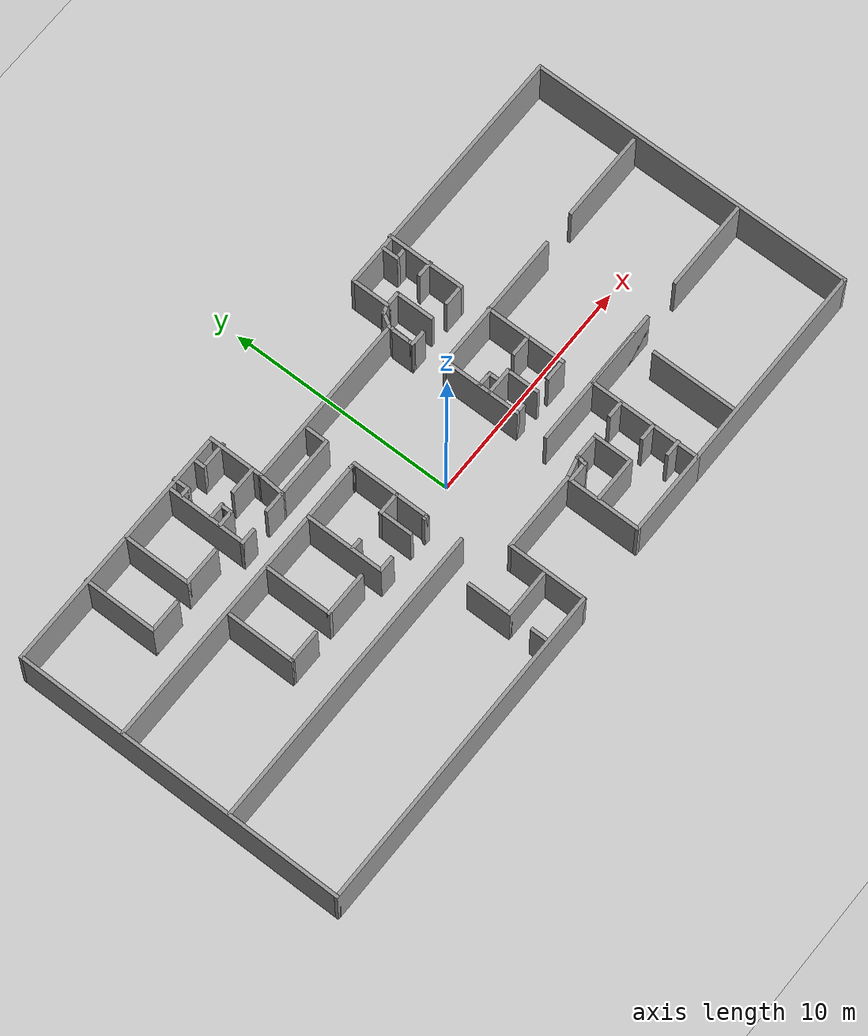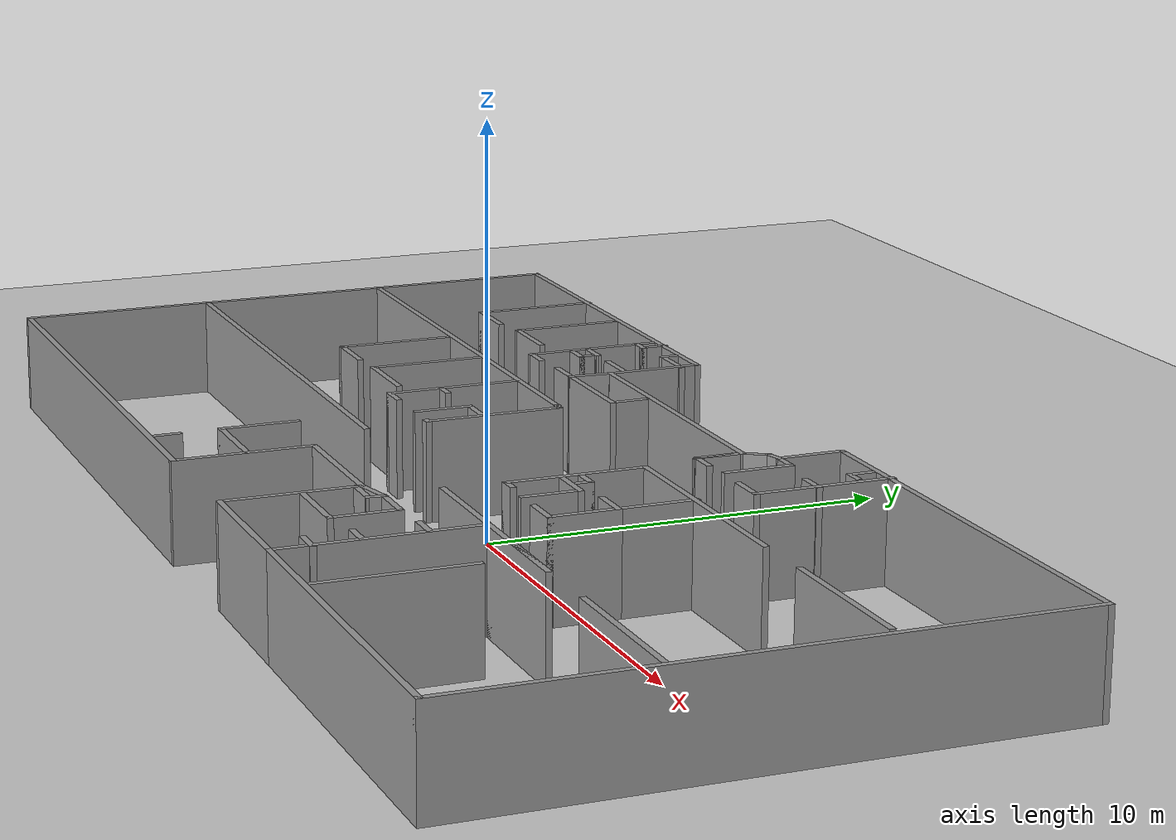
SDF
<sdf version="1.7">
 <world name="default">
  <model name="ground_plane">
   <static>1</static>
   <link name="link">
    <collision name="collision">
     <geometry><plane><normal>0 0 1</normal><size>100 100</size></plane></geometry>
     <surface>
      <contact><collide_bitmask>65535</collide_bitmask></contact>
      <friction><ode><mu>100</mu><mu2>50</mu2></ode></friction>
     </surface>
    </collision>
    <visual name="visual">
     <cast_shadows>0</cast_shadows>
     <geometry><plane><normal>0 0 1</normal><size>100 100</size></plane></geometry>
     <material>
      <script><uri>file://media/materials/scripts/gazebo.material</uri><name>Gazebo/Grey</name></script>
     </material>
    </visual>
   </link>
  </model>
  <model name="HQ">
   <pose>-0.222632 0.129868 0 0 -0 0</pose>
   <link name="Wall_1">
    <collision name="Wall_1_Collision">
     <geometry><box><size>6.25 0.15 2.5</size></box></geometry>
     <pose>0 0 1.25 0 -0 0</pose>
    </collision>
    <visual name="Wall_1_Visual">
     <pose>0 0 1.25 0 -0 0</pose>
     <geometry><box><size>6.25 0.15 2.5</size></box></geometry>
     <material>
      <script><uri>file://media/materials/scripts/gazebo.material</uri><name>Gazebo/Grey</name></script>
      <ambient>1 1 1 1</ambient>
     </material>
     <meta><layer>0</layer></meta>
    </visual>
    <pose>6.38643 -2.35903 0 0 -0 0</pose>
   </link>
   <link name="Wall_10">
    <collision name="Wall_10_Collision">
     <geometry><box><size>2 0.15 2.5</size></box></geometry>
     <pose>0 0 1.25 0 -0 0</pose>
    </collision>
    <visual name="Wall_10_Visual">
     <pose>0 0 1.25 0 -0 0</pose>
     <geometry><box><size>2 0.15 2.5</size></box></geometry>
     <material>
      <script><uri>file://media/materials/scripts/gazebo.material</uri><name>Gazebo/Grey</name></script>
      <ambient>1 1 1 1</ambient>
     </material>
     <meta><layer>0</layer></meta>
    </visual>
    <pose>3.54404 -5.35903 0 0 -0 3.14159</pose>
   </link>
   <link name="Wall_100">
    <collision name="Wall_100_Collision">
     <geometry><box><size>13.25 0.15 2.5</size></box></geometry>
     <pose>0 0 1.25 0 -0 0</pose>
    </collision>
    <visual name="Wall_100_Visual">
     <pose>0 0 1.25 0 -0 0</pose>
     <geometry><box><size>13.25 0.15 2.5</size></box></geometry>
     <material>
      <script><uri>file://media/materials/scripts/gazebo.material</uri><name>Gazebo/Grey</name></script>
      <ambient>1 1 1 1</ambient>
     </material>
     <meta><layer>0</layer></meta>
    </visual>
    <pose>-8.61792 2.54532 0 0 -0 0</pose>
   </link>
   <link name="Wall_102">
    <collision name="Wall_102_Collision">
     <geometry><box><size>3.5 0.15 2.5</size></box></geometry>
     <pose>0 0 1.25 0 -0 0</pose>
    </collision>
    <visual name="Wall_102_Visual">
     <pose>0 0 1.25 0 -0 0</pose>
     <geometry><box><size>3.5 0.15 2.5</size></box></geometry>
     <material>
      <script><uri>file://media/materials/scripts/gazebo.material</uri><name>Gazebo/Grey</name></script>
      <ambient>1 1 1 1</ambient>
     </material>
     <meta><layer>0</layer></meta>
    </visual>
    <pose>-4.55922 0.835536 0 0 -0 -1.5708</pose>
   </link>
   <link name="Wall_103">
    <collision name="Wall_103_Collision">
     <geometry><box><size>0.75 0.15 2.5</size></box></geometry>
     <pose>0 0 1.25 0 -0 0</pose>
    </collision>
    <visual name="Wall_103_Visual">
     <pose>0 0 1.25 0 -0 0</pose>
     <geometry><box><size>0.75 0.15 2.5</size></box></geometry>
     <material>
      <script><uri>file://media/materials/scripts/gazebo.material</uri><name>Gazebo/Grey</name></script>
      <ambient>1 1 1 1</ambient>
     </material>
     <meta><layer>0</layer></meta>
    </visual>
    <pose>-4.25922 -0.839464 0 0 -0 0</pose>
   </link>
   <link name="Wall_105">
    <collision name="Wall_105_Collision">
     <geometry><box><size>0.25 0.15 2.5</size></box></geometry>
     <pose>0 0 1.25 0 -0 0</pose>
    </collision>
    <visual name="Wall_105_Visual">
     <pose>0 0 1.25 0 -0 0</pose>
     <geometry><box><size>0.25 0.15 2.5</size></box></geometry>
     <material>
      <script><uri>file://media/materials/scripts/gazebo.material</uri><name>Gazebo/Grey</name></script>
      <ambient>1 1 1 1</ambient>
     </material>
     <meta><layer>0</layer></meta>
    </visual>
    <pose>-2.01962 2.53238 0 0 -0 -0.261799</pose>
   </link>
   <link name="Wall_106">
    <collision name="Wall_106_Collision">
     <geometry><box><size>0.25 0.15 2.5</size></box></geometry>
     <pose>0 0 1.25 0 -0 0</pose>
    </collision>
    <visual name="Wall_106_Visual">
     <pose>0 0 1.25 0 -0 0</pose>
     <geometry><box><size>0.25 0.15 2.5</size></box></geometry>
     <material>
      <script><uri>file://media/materials/scripts/gazebo.material</uri><name>Gazebo/Grey</name></script>
      <ambient>1 1 1 1</ambient>
     </material>
     <meta><layer>0</layer></meta>
    </visual>
    <pose>-1.92133 2.51944 0 0 -0 0</pose>
   </link>
   <link name="Wall_107">
    <collision name="Wall_107_Collision">
     <geometry><box><size>3.5 0.15 2.5</size></box></geometry>
     <pose>0 0 1.25 0 -0 0</pose>
    </collision>
    <visual name="Wall_107_Visual">
     <pose>0 0 1.25 0 -0 0</pose>
     <geometry><box><size>3.5 0.15 2.5</size></box></geometry>
     <material>
      <script><uri>file://media/materials/scripts/gazebo.material</uri><name>Gazebo/Grey</name></script>
      <ambient>1 1 1 1</ambient>
     </material>
     <meta><layer>0</layer></meta>
    </visual>
    <pose>-1.87133 0.844437 0 0 -0 -1.5708</pose>
   </link>
   <link name="Wall_108">
    <collision name="Wall_108_Collision">
     <geometry><box><size>0.25 0.15 2.5</size></box></geometry>
     <pose>0 0 1.25 0 -0 0</pose>
    </collision>
    <visual name="Wall_108_Visual">
     <pose>0 0 1.25 0 -0 0</pose>
     <geometry><box><size>0.25 0.15 2.5</size></box></geometry>
     <material>
      <script><uri>file://media/materials/scripts/gazebo.material</uri><name>Gazebo/Grey</name></script>
      <ambient>1 1 1 1</ambient>
     </material>
     <meta><layer>0</layer></meta>
    </visual>
    <pose>-1.92133 -0.830563 0 0 -0 3.14159</pose>
   </link>
   <link name="Wall_110">
    <collision name="Wall_110_Collision">
     <geometry><box><size>1 0.15 2.5</size></box></geometry>
     <pose>0 0 1.25 0 -0 0</pose>
    </collision>
    <visual name="Wall_110_Visual">
     <pose>0 0 1.25 0 -0 0</pose>
     <geometry><box><size>1 0.15 2.5</size></box></geometry>
     <material>
      <script><uri>file://media/materials/scripts/gazebo.material</uri><name>Gazebo/Grey</name></script>
      <ambient>1 1 1 1</ambient>
     </material>
     <meta><layer>0</layer></meta>
    </visual>
    <pose>-2.34075 0.56271 0 0 -0 3.14159</pose>
   </link>
   <link name="Wall_111">
    <collision name="Wall_111_Collision">
     <geometry><box><size>1.5 0.15 2.5</size></box></geometry>
     <pose>0 0 1.25 0 -0 0</pose>
    </collision>
    <visual name="Wall_111_Visual">
     <pose>0 0 1.25 0 -0 0</pose>
     <geometry><box><size>1.5 0.15 2.5</size></box></geometry>
     <material>
      <script><uri>file://media/materials/scripts/gazebo.material</uri><name>Gazebo/Grey</name></script>
      <ambient>1 1 1 1</ambient>
     </material>
     <meta><layer>0</layer></meta>
    </visual>
    <pose>-2.76575 -0.11229 0 0 -0 -1.5708</pose>
   </link>
   <link name="Wall_113">
    <collision name="Wall_113_Collision">
     <geometry><box><size>0.5 0.15 2.5</size></box></geometry>
     <pose>0 0 1.25 0 -0 0</pose>
    </collision>
    <visual name="Wall_113_Visual">
     <pose>0 0 1.25 0 -0 0</pose>
     <geometry><box><size>0.5 0.15 2.5</size></box></geometry>
     <material>
      <script><uri>file://media/materials/scripts/gazebo.material</uri><name>Gazebo/Grey</name></script>
      <ambient>1 1 1 1</ambient>
     </material>
     <meta><layer>0</layer></meta>
    </visual>
    <pose>-4.31466 0.493145 0 0 -0 0</pose>
   </link>
   <link name="Wall_115">
    <collision name="Wall_115_Collision">
     <geometry><box><size>3 0.15 2.5</size></box></geometry>
     <pose>0 0 1.25 0 -0 0</pose>
    </collision>
    <visual name="Wall_115_Visual">
     <pose>0 0 1.25 0 -0 0</pose>
     <geometry><box><size>3 0.15 2.5</size></box></geometry>
     <material>
      <script><uri>file://media/materials/scripts/gazebo.material</uri><name>Gazebo/Grey</name></script>
      <ambient>1 1 1 1</ambient>
     </material>
     <meta><layer>0</layer></meta>
    </visual>
    <pose>-7.02879 1.01597 0 0 -0 -1.5708</pose>
   </link>
   <link name="Wall_116">
    <collision name="Wall_116_Collision">
     <geometry><box><size>2 0.15 2.5</size></box></geometry>
     <pose>0 0 1.25 0 -0 0</pose>
    </collision>
    <visual name="Wall_116_Visual">
     <pose>0 0 1.25 0 -0 0</pose>
     <geometry><box><size>2 0.15 2.5</size></box></geometry>
     <material>
      <script><uri>file://media/materials/scripts/gazebo.material</uri><name>Gazebo/Grey</name></script>
      <ambient>1 1 1 1</ambient>
     </material>
     <meta><layer>0</layer></meta>
    </visual>
    <pose>-6.10379 -0.409029 0 0 -0 0</pose>
   </link>
   <link name="Wall_118">
    <collision name="Wall_118_Collision">
     <geometry><box><size>3 0.15 2.5</size></box></geometry>
     <pose>0 0 1.25 0 -0 0</pose>
    </collision>
    <visual name="Wall_118_Visual">
     <pose>0 0 1.25 0 -0 0</pose>
     <geometry><box><size>3 0.15 2.5</size></box></geometry>
     <material>
      <script><uri>file://media/materials/scripts/gazebo.material</uri><name>Gazebo/Grey</name></script>
      <ambient>1 1 1 1</ambient>
     </material>
     <meta><layer>0</layer></meta>
    </visual>
    <pose>-9.28966 0.946406 0 0 -0 -1.5708</pose>
   </link>
   <link name="Wall_119">
    <collision name="Wall_119_Collision">
     <geometry><box><size>1.5 0.15 2.5</size></box></geometry>
     <pose>0 0 1.25 0 -0 0</pose>
    </collision>
    <visual name="Wall_119_Visual">
     <pose>0 0 1.25 0 -0 0</pose>
     <geometry><box><size>1.5 0.15 2.5</size></box></geometry>
     <material>
      <script><uri>file://media/materials/scripts/gazebo.material</uri><name>Gazebo/Grey</name></script>
      <ambient>1 1 1 1</ambient>
     </material>
     <meta><layer>0</layer></meta>
    </visual>
    <pose>-8.61466 -0.478594 0 0 -0 0</pose>
   </link>
   <link name="Wall_12">
    <collision name="Wall_12_Collision">
     <geometry><box><size>0.75 0.15 2.5</size></box></geometry>
     <pose>0 0 1.25 0 -0 0</pose>
    </collision>
    <visual name="Wall_12_Visual">
     <pose>0 0 1.25 0 -0 0</pose>
     <geometry><box><size>0.75 0.15 2.5</size></box></geometry>
     <material>
      <script><uri>file://media/materials/scripts/gazebo.material</uri><name>Gazebo/Grey</name></script>
      <ambient>1 1 1 1</ambient>
     </material>
     <meta><layer>0</layer></meta>
    </visual>
    <pose>5.75817 -3.68077 0 0 -0 0</pose>
   </link>
   <link name="Wall_121">
    <collision name="Wall_121_Collision">
     <geometry><box><size>13.5 0.15 2.5</size></box></geometry>
     <pose>0 0 1.25 0 -0 0</pose>
    </collision>
    <visual name="Wall_121_Visual">
     <pose>0 0 1.25 0 -0 0</pose>
     <geometry><box><size>13.5 0.15 2.5</size></box></geometry>
     <material>
      <script><uri>file://media/materials/scripts/gazebo.material</uri><name>Gazebo/Grey</name></script>
      <ambient>1 1 1 1</ambient>
     </material>
     <meta><layer>0</layer></meta>
    </visual>
    <pose>-8.49292 -2.39381 0 0 -0 0</pose>
   </link>
   <link name="Wall_123">
    <collision name="Wall_123_Collision">
     <geometry><box><size>2 0.15 2.5</size></box></geometry>
     <pose>0 0 1.25 0 -0 0</pose>
    </collision>
    <visual name="Wall_123_Visual">
     <pose>0 0 1.25 0 -0 0</pose>
     <geometry><box><size>2 0.15 2.5</size></box></geometry>
     <material>
      <script><uri>file://media/materials/scripts/gazebo.material</uri><name>Gazebo/Grey</name></script>
      <ambient>1 1 1 1</ambient>
     </material>
     <meta><layer>0</layer></meta>
    </visual>
    <pose>-2.99401 -4.64055 0 0 -0 -1.5708</pose>
   </link>
   <link name="Wall_125">
    <collision name="Wall_125_Collision">
     <geometry><box><size>0.75 0.15 2.5</size></box></geometry>
     <pose>0 0 1.25 0 -0 0</pose>
    </collision>
    <visual name="Wall_125_Visual">
     <pose>0 0 1.25 0 -0 0</pose>
     <geometry><box><size>0.75 0.15 2.5</size></box></geometry>
     <material>
      <script><uri>file://media/materials/scripts/gazebo.material</uri><name>Gazebo/Grey</name></script>
      <ambient>1 1 1 1</ambient>
     </material>
     <meta><layer>0</layer></meta>
    </visual>
    <pose>-2.95922 -6.90251 0 0 -0 -1.5708</pose>
   </link>
   <link name="Wall_127">
    <collision name="Wall_127_Collision">
     <geometry><box><size>2.25 0.15 2.5</size></box></geometry>
     <pose>0 0 1.25 0 -0 0</pose>
    </collision>
    <visual name="Wall_127_Visual">
     <pose>0 0 1.25 0 -0 0</pose>
     <geometry><box><size>2.25 0.15 2.5</size></box></geometry>
     <material>
      <script><uri>file://media/materials/scripts/gazebo.material</uri><name>Gazebo/Grey</name></script>
      <ambient>1 1 1 1</ambient>
     </material>
     <meta><layer>0</layer></meta>
    </visual>
    <pose>-1.94401 -5.56555 0 0 -0 0</pose>
   </link>
   <link name="Wall_129">
    <collision name="Wall_129_Collision">
     <geometry><box><size>1.06261 0.15 2.5</size></box></geometry>
     <pose>0 0 1.25 0 -0 0</pose>
    </collision>
    <visual name="Wall_129_Visual">
     <pose>0 0 1.25 0 -0 0</pose>
     <geometry><box><size>1.06261 0.15 2.5</size></box></geometry>
     <material>
      <script><uri>file://media/materials/scripts/gazebo.material</uri><name>Gazebo/Grey</name></script>
      <ambient>1 1 1 1</ambient>
     </material>
     <meta><layer>0</layer></meta>
    </visual>
    <pose>2.95978 -3.86413 0 0 -0 0.232417</pose>
   </link>
   <link name="Wall_14">
    <collision name="Wall_14_Collision">
     <geometry><box><size>0.75 0.15 2.5</size></box></geometry>
     <pose>0 0 1.25 0 -0 0</pose>
    </collision>
    <visual name="Wall_14_Visual">
     <pose>0 0 1.25 0 -0 0</pose>
     <geometry><box><size>0.75 0.15 2.5</size></box></geometry>
     <material>
      <script><uri>file://media/materials/scripts/gazebo.material</uri><name>Gazebo/Grey</name></script>
      <ambient>1 1 1 1</ambient>
     </material>
     <meta><layer>0</layer></meta>
    </visual>
    <pose>5.78425 -5.17642 0 0 -0 3.14159</pose>
   </link>
   <link name="Wall_16">
    <collision name="Wall_16_Collision">
     <geometry><box><size>0.75 0.15 2.5</size></box></geometry>
     <pose>0 0 1.25 0 -0 0</pose>
    </collision>
    <visual name="Wall_16_Visual">
     <pose>0 0 1.25 0 -0 0</pose>
     <geometry><box><size>0.75 0.15 2.5</size></box></geometry>
     <material>
      <script><uri>file://media/materials/scripts/gazebo.material</uri><name>Gazebo/Grey</name></script>
      <ambient>1 1 1 1</ambient>
     </material>
     <meta><layer>0</layer></meta>
    </visual>
    <pose>5.85382 -6.28946 0 0 -0 3.14159</pose>
   </link>
   <link name="Wall_18">
    <collision name="Wall_18_Collision">
     <geometry><box><size>9.25 0.15 2.5</size></box></geometry>
     <pose>0 0 1.25 0 -0 0</pose>
    </collision>
    <visual name="Wall_18_Visual">
     <pose>0 0 1.25 0 -0 0</pose>
     <geometry><box><size>9.25 0.15 2.5</size></box></geometry>
     <material>
      <script><uri>file://media/materials/scripts/gazebo.material</uri><name>Gazebo/Grey</name></script>
      <ambient>1 1 1 1</ambient>
     </material>
     <meta><layer>0</layer></meta>
    </visual>
    <pose>10.669 -7.20903 0 0 -0 0</pose>
   </link>
   <link name="Wall_19">
    <collision name="Wall_19_Collision">
     <geometry><box><size>14.5 0.15 2.5</size></box></geometry>
     <pose>0 0 1.25 0 -0 0</pose>
    </collision>
    <visual name="Wall_19_Visual">
     <pose>0 0 1.25 0 -0 0</pose>
     <geometry><box><size>14.5 0.15 2.5</size></box></geometry>
     <material>
      <script><uri>file://media/materials/scripts/gazebo.material</uri><name>Gazebo/Grey</name></script>
      <ambient>1 1 1 1</ambient>
     </material>
     <meta><layer>0</layer></meta>
    </visual>
    <pose>15.219 -0.034029 0 0 -0 1.5708</pose>
   </link>
   <link name="Wall_20">
    <collision name="Wall_20_Collision">
     <geometry><box><size>11.5 0.15 2.5</size></box></geometry>
     <pose>0 0 1.25 0 -0 0</pose>
    </collision>
    <visual name="Wall_20_Visual">
     <pose>0 0 1.25 0 -0 0</pose>
     <geometry><box><size>11.5 0.15 2.5</size></box></geometry>
     <material>
      <script><uri>file://media/materials/scripts/gazebo.material</uri><name>Gazebo/Grey</name></script>
      <ambient>1 1 1 1</ambient>
     </material>
     <meta><layer>0</layer></meta>
    </visual>
    <pose>9.54404 7.14097 0 0 -0 3.14159</pose>
   </link>
   <link name="Wall_21">
    <collision name="Wall_21_Collision">
     <geometry><box><size>1.75 0.15 2.5</size></box></geometry>
     <pose>0 0 1.25 0 -0 0</pose>
    </collision>
    <visual name="Wall_21_Visual">
     <pose>0 0 1.25 0 -0 0</pose>
     <geometry><box><size>1.75 0.15 2.5</size></box></geometry>
     <material>
      <script><uri>file://media/materials/scripts/gazebo.material</uri><name>Gazebo/Grey</name></script>
      <ambient>1 1 1 1</ambient>
     </material>
     <meta><layer>0</layer></meta>
    </visual>
    <pose>3.86904 6.34097 0 0 -0 -1.5708</pose>
   </link>
   <link name="Wall_22">
    <collision name="Wall_22_Collision">
     <geometry><box><size>0.5 0.15 2.5</size></box></geometry>
     <pose>0 0 1.25 0 -0 0</pose>
    </collision>
    <visual name="Wall_22_Visual">
     <pose>0 0 1.25 0 -0 0</pose>
     <geometry><box><size>0.5 0.15 2.5</size></box></geometry>
     <material>
      <script><uri>file://media/materials/scripts/gazebo.material</uri><name>Gazebo/Grey</name></script>
      <ambient>1 1 1 1</ambient>
     </material>
     <meta><layer>0</layer></meta>
    </visual>
    <pose>3.7 5.49568 0 0 -0 -2.87979</pose>
   </link>
   <link name="Wall_23">
    <collision name="Wall_23_Collision">
     <geometry><box><size>0.75 0.15 2.5</size></box></geometry>
     <pose>0 0 1.25 0 -0 0</pose>
    </collision>
    <visual name="Wall_23_Visual">
     <pose>0 0 1.25 0 -0 0</pose>
     <geometry><box><size>0.75 0.15 2.5</size></box></geometry>
     <material>
      <script><uri>file://media/materials/scripts/gazebo.material</uri><name>Gazebo/Grey</name></script>
      <ambient>1 1 1 1</ambient>
     </material>
     <meta><layer>0</layer></meta>
    </visual>
    <pose>3.38096 5.19058 0 0 -0 -2.0944</pose>
   </link>
   <link name="Wall_24">
    <collision name="Wall_24_Collision">
     <geometry><box><size>7.75 0.15 2.5</size></box></geometry>
     <pose>0 0 1.25 0 -0 0</pose>
    </collision>
    <visual name="Wall_24_Visual">
     <pose>0 0 1.25 0 -0 0</pose>
     <geometry><box><size>7.75 0.15 2.5</size></box></geometry>
     <material>
      <script><uri>file://media/materials/scripts/gazebo.material</uri><name>Gazebo/Grey</name></script>
      <ambient>1 1 1 1</ambient>
     </material>
     <meta><layer>0</layer></meta>
    </visual>
    <pose>-0.569037 4.93077 0 0 -0 3.14159</pose>
   </link>
   <link name="Wall_25">
    <collision name="Wall_25_Collision">
     <geometry><box><size>2.5 0.15 2.5</size></box></geometry>
     <pose>0 0 1.25 0 -0 0</pose>
    </collision>
    <visual name="Wall_25_Visual">
     <pose>0 0 1.25 0 -0 0</pose>
     <geometry><box><size>2.5 0.15 2.5</size></box></geometry>
     <material>
      <script><uri>file://media/materials/scripts/gazebo.material</uri><name>Gazebo/Grey</name></script>
      <ambient>1 1 1 1</ambient>
     </material>
     <meta><layer>0</layer></meta>
    </visual>
    <pose>-4.36904 6.10577 0 0 -0 1.5708</pose>
   </link>
   <link name="Wall_26">
    <collision name="Wall_26_Collision">
     <geometry><box><size>11 0.15 2.5</size></box></geometry>
     <pose>0 0 1.25 0 -0 0</pose>
    </collision>
    <visual name="Wall_26_Visual">
     <pose>0 0 1.25 0 -0 0</pose>
     <geometry><box><size>11 0.15 2.5</size></box></geometry>
     <material>
      <script><uri>file://media/materials/scripts/gazebo.material</uri><name>Gazebo/Grey</name></script>
      <ambient>1 1 1 1</ambient>
     </material>
     <meta><layer>0</layer></meta>
    </visual>
    <pose>-9.79404 7.28077 0 0 -0 3.14159</pose>
   </link>
   <link name="Wall_27">
    <collision name="Wall_27_Collision">
     <geometry><box><size>14.75 0.15 2.5</size></box></geometry>
     <pose>0 0 1.25 0 -0 0</pose>
    </collision>
    <visual name="Wall_27_Visual">
     <pose>0 0 1.25 0 -0 0</pose>
     <geometry><box><size>14.75 0.15 2.5</size></box></geometry>
     <material>
      <script><uri>file://media/materials/scripts/gazebo.material</uri><name>Gazebo/Grey</name></script>
      <ambient>1 1 1 1</ambient>
     </material>
     <meta><layer>0</layer></meta>
    </visual>
    <pose>-15.219 -0.019231 0 0 -0 -1.5708</pose>
   </link>
   <link name="Wall_28">
    <collision name="Wall_28_Collision">
     <geometry><box><size>14.5 0.15 2.5</size></box></geometry>
     <pose>0 0 1.25 0 -0 0</pose>
    </collision>
    <visual name="Wall_28_Visual">
     <pose>0 0 1.25 0 -0 0</pose>
     <geometry><box><size>14.5 0.15 2.5</size></box></geometry>
     <material>
      <script><uri>file://media/materials/scripts/gazebo.material</uri><name>Gazebo/Grey</name></script>
      <ambient>1 1 1 1</ambient>
     </material>
     <meta><layer>0</layer></meta>
    </visual>
    <pose>-8.04404 -7.31923 0 0 -0 0</pose>
   </link>
   <link name="Wall_29">
    <collision name="Wall_29_Collision">
     <geometry><box><size>3.5 0.15 2.5</size></box></geometry>
     <pose>0 0 1.25 0 -0 0</pose>
    </collision>
    <visual name="Wall_29_Visual">
     <pose>0 0 1.25 0 -0 0</pose>
     <geometry><box><size>3.5 0.15 2.5</size></box></geometry>
     <material>
      <script><uri>file://media/materials/scripts/gazebo.material</uri><name>Gazebo/Grey</name></script>
      <ambient>1 1 1 1</ambient>
     </material>
     <meta><layer>0</layer></meta>
    </visual>
    <pose>-0.869037 -5.64423 0 0 -0 1.5708</pose>
   </link>
   <link name="Wall_3">
    <collision name="Wall_3_Collision">
     <geometry><box><size>5 0.15 2.5</size></box></geometry>
     <pose>0 0 1.25 0 -0 0</pose>
    </collision>
    <visual name="Wall_3_Visual">
     <pose>0 0 1.25 0 -0 0</pose>
     <geometry><box><size>5 0.15 2.5</size></box></geometry>
     <material>
      <script><uri>file://media/materials/scripts/gazebo.material</uri><name>Gazebo/Grey</name></script>
      <ambient>1 1 1 1</ambient>
     </material>
     <meta><layer>0</layer></meta>
    </visual>
    <pose>6.11904 -4.78403 0 0 -0 -1.5708</pose>
   </link>
   <link name="Wall_30">
    <collision name="Wall_30_Collision">
     <geometry><box><size>3.5355 0.15 2.5</size></box></geometry>
     <pose>0 0 1.25 0 -0 0</pose>
    </collision>
    <visual name="Wall_30_Visual">
     <pose>0 0 1.25 0 -0 0</pose>
     <geometry><box><size>3.5355 0.15 2.5</size></box></geometry>
     <material>
      <script><uri>file://media/materials/scripts/gazebo.material</uri><name>Gazebo/Grey</name></script>
      <ambient>1 1 1 1</ambient>
     </material>
     <meta><layer>0</layer></meta>
    </visual>
    <pose>0.823354 -3.96923 0 0 -0 0</pose>
   </link>
   <link name="Wall_32">
    <collision name="Wall_32_Collision">
     <geometry><box><size>3.46739 0.15 2.5</size></box></geometry>
     <pose>0 0 1.25 0 -0 0</pose>
    </collision>
    <visual name="Wall_32_Visual">
     <pose>0 0 1.25 0 -0 0</pose>
     <geometry><box><size>3.46739 0.15 2.5</size></box></geometry>
     <material>
      <script><uri>file://media/materials/scripts/gazebo.material</uri><name>Gazebo/Grey</name></script>
      <ambient>1 1 1 1</ambient>
     </material>
     <meta><layer>0</layer></meta>
    </visual>
    <pose>7.77773 -2.35903 0 0 -0 0</pose>
   </link>
   <link name="Wall_34">
    <collision name="Wall_34_Collision">
     <geometry><box><size>3.75 0.15 2.5</size></box></geometry>
     <pose>0 0 1.25 0 -0 0</pose>
    </collision>
    <visual name="Wall_34_Visual">
     <pose>0 0 1.25 0 -0 0</pose>
     <geometry><box><size>3.75 0.15 2.5</size></box></geometry>
     <material>
      <script><uri>file://media/materials/scripts/gazebo.material</uri><name>Gazebo/Grey</name></script>
      <ambient>1 1 1 1</ambient>
     </material>
     <meta><layer>0</layer></meta>
    </visual>
    <pose>8.48425 -5.25468 0 0 -0 1.5708</pose>
   </link>
   <link name="Wall_36">
    <collision name="Wall_36_Collision">
     <geometry><box><size>4 0.15 2.5</size></box></geometry>
     <pose>0 0 1.25 0 -0 0</pose>
    </collision>
    <visual name="Wall_36_Visual">
     <pose>0 0 1.25 0 -0 0</pose>
     <geometry><box><size>4 0.15 2.5</size></box></geometry>
     <material>
      <script><uri>file://media/materials/scripts/gazebo.material</uri><name>Gazebo/Grey</name></script>
      <ambient>1 1 1 1</ambient>
     </material>
     <meta><layer>0</layer></meta>
    </visual>
    <pose>13.1679 -2.32425 0 0 -0 3.14159</pose>
   </link>
   <link name="Wall_38">
    <collision name="Wall_38_Collision">
     <geometry><box><size>4 0.15 2.5</size></box></geometry>
     <pose>0 0 1.25 0 -0 0</pose>
    </collision>
    <visual name="Wall_38_Visual">
     <pose>0 0 1.25 0 -0 0</pose>
     <geometry><box><size>4 0.15 2.5</size></box></geometry>
     <material>
      <script><uri>file://media/materials/scripts/gazebo.material</uri><name>Gazebo/Grey</name></script>
      <ambient>1 1 1 1</ambient>
     </material>
     <meta><layer>0</layer></meta>
    </visual>
    <pose>13.0288 2.47575 0 0 -0 3.14159</pose>
   </link>
   <link name="Wall_4">
    <collision name="Wall_4_Collision">
     <geometry><box><size>3.75 0.15 2.5</size></box></geometry>
     <pose>0 0 1.25 0 -0 0</pose>
    </collision>
    <visual name="Wall_4_Visual">
     <pose>0 0 1.25 0 -0 0</pose>
     <geometry><box><size>3.75 0.15 2.5</size></box></geometry>
     <material>
      <script><uri>file://media/materials/scripts/gazebo.material</uri><name>Gazebo/Grey</name></script>
      <ambient>1 1 1 1</ambient>
     </material>
     <meta><layer>0</layer></meta>
    </visual>
    <pose>4.31904 -7.20903 0 0 -0 3.14159</pose>
   </link>
   <link name="Wall_40">
    <collision name="Wall_40_Collision">
     <geometry><box><size>6.25 0.15 2.5</size></box></geometry>
     <pose>0 0 1.25 0 -0 0</pose>
    </collision>
    <visual name="Wall_40_Visual">
     <pose>0 0 1.25 0 -0 0</pose>
     <geometry><box><size>6.25 0.15 2.5</size></box></geometry>
     <material>
      <script><uri>file://media/materials/scripts/gazebo.material</uri><name>Gazebo/Grey</name></script>
      <ambient>1 1 1 1</ambient>
     </material>
     <meta><layer>0</layer></meta>
    </visual>
    <pose>6.47773 2.44097 0 0 -0 3.14159</pose>
   </link>
   <link name="Wall_41">
    <collision name="Wall_41_Collision">
     <geometry><box><size>3.5 0.15 2.5</size></box></geometry>
     <pose>0 0 1.25 0 -0 0</pose>
    </collision>
    <visual name="Wall_41_Visual">
     <pose>0 0 1.25 0 -0 0</pose>
     <geometry><box><size>3.5 0.15 2.5</size></box></geometry>
     <material>
      <script><uri>file://media/materials/scripts/gazebo.material</uri><name>Gazebo/Grey</name></script>
      <ambient>1 1 1 1</ambient>
     </material>
     <meta><layer>0</layer></meta>
    </visual>
    <pose>3.42773 0.765971 0 0 -0 -1.5708</pose>
   </link>
   <link name="Wall_42">
    <collision name="Wall_42_Collision">
     <geometry><box><size>0.5 0.15 2.5</size></box></geometry>
     <pose>0 0 1.25 0 -0 0</pose>
    </collision>
    <visual name="Wall_42_Visual">
     <pose>0 0 1.25 0 -0 0</pose>
     <geometry><box><size>0.5 0.15 2.5</size></box></geometry>
     <material>
      <script><uri>file://media/materials/scripts/gazebo.material</uri><name>Gazebo/Grey</name></script>
      <ambient>1 1 1 1</ambient>
     </material>
     <meta><layer>0</layer></meta>
    </visual>
    <pose>3.60273 -0.909029 0 0 -0 0</pose>
   </link>
   <link name="Wall_44">
    <collision name="Wall_44_Collision">
     <geometry><box><size>1.5 0.15 2.5</size></box></geometry>
     <pose>0 0 1.25 0 -0 0</pose>
    </collision>
    <visual name="Wall_44_Visual">
     <pose>0 0 1.25 0 -0 0</pose>
     <geometry><box><size>1.5 0.15 2.5</size></box></geometry>
     <material>
      <script><uri>file://media/materials/scripts/gazebo.material</uri><name>Gazebo/Grey</name></script>
      <ambient>1 1 1 1</ambient>
     </material>
     <meta><layer>0</layer></meta>
    </visual>
    <pose>4.55382 -0.292725 0 0 -0 1.5708</pose>
   </link>
   <link name="Wall_45">
    <collision name="Wall_45_Collision">
     <geometry><box><size>1.25 0.15 2.5</size></box></geometry>
     <pose>0 0 1.25 0 -0 0</pose>
    </collision>
    <visual name="Wall_45_Visual">
     <pose>0 0 1.25 0 -0 0</pose>
     <geometry><box><size>1.25 0.15 2.5</size></box></geometry>
     <material>
      <script><uri>file://media/materials/scripts/gazebo.material</uri><name>Gazebo/Grey</name></script>
      <ambient>1 1 1 1</ambient>
     </material>
     <meta><layer>0</layer></meta>
    </visual>
    <pose>4.00382 0.382275 0 0 -0 3.14159</pose>
   </link>
   <link name="Wall_47">
    <collision name="Wall_47_Collision">
     <geometry><box><size>0.5 0.15 2.5</size></box></geometry>
     <pose>0 0 1.25 0 -0 0</pose>
    </collision>
    <visual name="Wall_47_Visual">
     <pose>0 0 1.25 0 -0 0</pose>
     <geometry><box><size>0.5 0.15 2.5</size></box></geometry>
     <material>
      <script><uri>file://media/materials/scripts/gazebo.material</uri><name>Gazebo/Grey</name></script>
      <ambient>1 1 1 1</ambient>
     </material>
     <meta><layer>0</layer></meta>
    </visual>
    <pose>4.03208 0.668145 0 0 -0 1.5708</pose>
   </link>
   <link name="Wall_48">
    <collision name="Wall_48_Collision">
     <geometry><box><size>0.75 0.15 2.5</size></box></geometry>
     <pose>0 0 1.25 0 -0 0</pose>
    </collision>
    <visual name="Wall_48_Visual">
     <pose>0 0 1.25 0 -0 0</pose>
     <geometry><box><size>0.75 0.15 2.5</size></box></geometry>
     <material>
      <script><uri>file://media/materials/scripts/gazebo.material</uri><name>Gazebo/Grey</name></script>
      <ambient>1 1 1 1</ambient>
     </material>
     <meta><layer>0</layer></meta>
    </visual>
    <pose>3.73208 0.843145 0 0 -0 3.14159</pose>
   </link>
   <link name="Wall_5">
    <collision name="Wall_5_Collision">
     <geometry><box><size>3.25 0.15 2.5</size></box></geometry>
     <pose>0 0 1.25 0 -0 0</pose>
    </collision>
    <visual name="Wall_5_Visual">
     <pose>0 0 1.25 0 -0 0</pose>
     <geometry><box><size>3.25 0.15 2.5</size></box></geometry>
     <material>
      <script><uri>file://media/materials/scripts/gazebo.material</uri><name>Gazebo/Grey</name></script>
      <ambient>1 1 1 1</ambient>
     </material>
     <meta><layer>0</layer></meta>
    </visual>
    <pose>2.51904 -5.65903 0 0 -0 1.5708</pose>
   </link>
   <link name="Wall_50">
    <collision name="Wall_50_Collision">
     <geometry><box><size>2 0.15 2.5</size></box></geometry>
     <pose>0 0 1.25 0 -0 0</pose>
    </collision>
    <visual name="Wall_50_Visual">
     <pose>0 0 1.25 0 -0 0</pose>
     <geometry><box><size>2 0.15 2.5</size></box></geometry>
     <material>
      <script><uri>file://media/materials/scripts/gazebo.material</uri><name>Gazebo/Grey</name></script>
      <ambient>1 1 1 1</ambient>
     </material>
     <meta><layer>0</layer></meta>
    </visual>
    <pose>6.08425 1.55075 0 0 -0 -1.5708</pose>
   </link>
   <link name="Wall_51">
    <collision name="Wall_51_Collision">
     <geometry><box><size>1 0.15 2.5</size></box></geometry>
     <pose>0 0 1.25 0 -0 0</pose>
    </collision>
    <visual name="Wall_51_Visual">
     <pose>0 0 1.25 0 -0 0</pose>
     <geometry><box><size>1 0.15 2.5</size></box></geometry>
     <material>
      <script><uri>file://media/materials/scripts/gazebo.material</uri><name>Gazebo/Grey</name></script>
      <ambient>1 1 1 1</ambient>
     </material>
     <meta><layer>0</layer></meta>
    </visual>
    <pose>5.65925 0.625754 0 0 -0 3.14159</pose>
   </link>
   <link name="Wall_53">
    <collision name="Wall_53_Collision">
     <geometry><box><size>1.75 0.15 2.5</size></box></geometry>
     <pose>0 0 1.25 0 -0 0</pose>
    </collision>
    <visual name="Wall_53_Visual">
     <pose>0 0 1.25 0 -0 0</pose>
     <geometry><box><size>1.75 0.15 2.5</size></box></geometry>
     <material>
      <script><uri>file://media/materials/scripts/gazebo.material</uri><name>Gazebo/Grey</name></script>
      <ambient>1 1 1 1</ambient>
     </material>
     <meta><layer>0</layer></meta>
    </visual>
    <pose>6.08425 -0.174246 0 0 -0 -1.5708</pose>
   </link>
   <link name="Wall_54">
    <collision name="Wall_54_Collision">
     <geometry><box><size>1 0.15 2.5</size></box></geometry>
     <pose>0 0 1.25 0 -0 0</pose>
    </collision>
    <visual name="Wall_54_Visual">
     <pose>0 0 1.25 0 -0 0</pose>
     <geometry><box><size>1 0.15 2.5</size></box></geometry>
     <material>
      <script><uri>file://media/materials/scripts/gazebo.material</uri><name>Gazebo/Grey</name></script>
      <ambient>1 1 1 1</ambient>
     </material>
     <meta><layer>0</layer></meta>
    </visual>
    <pose>5.65925 -0.974246 0 0 -0 3.14159</pose>
   </link>
   <link name="Wall_56">
    <collision name="Wall_56_Collision">
     <geometry><box><size>3.5 0.15 2.5</size></box></geometry>
     <pose>0 0 1.25 0 -0 0</pose>
    </collision>
    <visual name="Wall_56_Visual">
     <pose>0 0 1.25 0 -0 0</pose>
     <geometry><box><size>3.5 0.15 2.5</size></box></geometry>
     <material>
      <script><uri>file://media/materials/scripts/gazebo.material</uri><name>Gazebo/Grey</name></script>
      <ambient>1 1 1 1</ambient>
     </material>
     <meta><layer>0</layer></meta>
    </visual>
    <pose>6.15382 5.53119 0 0 -0 -1.5708</pose>
   </link>
   <link name="Wall_57">
    <collision name="Wall_57_Collision">
     <geometry><box><size>1 0.15 2.5</size></box></geometry>
     <pose>0 0 1.25 0 -0 0</pose>
    </collision>
    <visual name="Wall_57_Visual">
     <pose>0 0 1.25 0 -0 0</pose>
     <geometry><box><size>1 0.15 2.5</size></box></geometry>
     <material>
      <script><uri>file://media/materials/scripts/gazebo.material</uri><name>Gazebo/Grey</name></script>
      <ambient>1 1 1 1</ambient>
     </material>
     <meta><layer>0</layer></meta>
    </visual>
    <pose>5.72882 3.85619 0 0 -0 3.14159</pose>
   </link>
   <link name="Wall_59">
    <collision name="Wall_59_Collision">
     <geometry><box><size>0.75 0.15 2.5</size></box></geometry>
     <pose>0 0 1.25 0 -0 0</pose>
    </collision>
    <visual name="Wall_59_Visual">
     <pose>0 0 1.25 0 -0 0</pose>
     <geometry><box><size>0.75 0.15 2.5</size></box></geometry>
     <material>
      <script><uri>file://media/materials/scripts/gazebo.material</uri><name>Gazebo/Grey</name></script>
      <ambient>1 1 1 1</ambient>
     </material>
     <meta><layer>0</layer></meta>
    </visual>
    <pose>5.5973 6.76054 0 0 -0 -1.5708</pose>
   </link>
   <link name="Wall_6">
    <collision name="Wall_6_Collision">
     <geometry><box><size>1 0.15 2.5</size></box></geometry>
     <pose>0 0 1.25 0 -0 0</pose>
    </collision>
    <visual name="Wall_6_Visual">
     <pose>0 0 1.25 0 -0 0</pose>
     <geometry><box><size>1 0.15 2.5</size></box></geometry>
     <material>
      <script><uri>file://media/materials/scripts/gazebo.material</uri><name>Gazebo/Grey</name></script>
      <ambient>1 1 1 1</ambient>
     </material>
     <meta><layer>0</layer></meta>
    </visual>
    <pose>2.94404 -4.10903 0 0 -0 0</pose>
   </link>
   <link name="Wall_60">
    <collision name="Wall_60_Collision">
     <geometry><box><size>0.5 0.15 2.5</size></box></geometry>
     <pose>0 0 1.25 0 -0 0</pose>
    </collision>
    <visual name="Wall_60_Visual">
     <pose>0 0 1.25 0 -0 0</pose>
     <geometry><box><size>0.5 0.15 2.5</size></box></geometry>
     <material>
      <script><uri>file://media/materials/scripts/gazebo.material</uri><name>Gazebo/Grey</name></script>
      <ambient>1 1 1 1</ambient>
     </material>
     <meta><layer>0</layer></meta>
    </visual>
    <pose>5.7723 6.46054 0 0 -0 0</pose>
   </link>
   <link name="Wall_62">
    <collision name="Wall_62_Collision">
     <geometry><box><size>1 0.15 2.5</size></box></geometry>
     <pose>0 0 1.25 0 -0 0</pose>
    </collision>
    <visual name="Wall_62_Visual">
     <pose>0 0 1.25 0 -0 0</pose>
     <geometry><box><size>1 0.15 2.5</size></box></geometry>
     <material>
      <script><uri>file://media/materials/scripts/gazebo.material</uri><name>Gazebo/Grey</name></script>
      <ambient>1 1 1 1</ambient>
     </material>
     <meta><layer>0</layer></meta>
    </visual>
    <pose>3.1973 4.24206 0 0 -0 -1.5708</pose>
   </link>
   <link name="Wall_63">
    <collision name="Wall_63_Collision">
     <geometry><box><size>0.75 0.15 2.5</size></box></geometry>
     <pose>0 0 1.25 0 -0 0</pose>
    </collision>
    <visual name="Wall_63_Visual">
     <pose>0 0 1.25 0 -0 0</pose>
     <geometry><box><size>0.75 0.15 2.5</size></box></geometry>
     <material>
      <script><uri>file://media/materials/scripts/gazebo.material</uri><name>Gazebo/Grey</name></script>
      <ambient>1 1 1 1</ambient>
     </material>
     <meta><layer>0</layer></meta>
    </visual>
    <pose>3.4973 3.81706 0 0 -0 0</pose>
   </link>
   <link name="Wall_65">
    <collision name="Wall_65_Collision">
     <geometry><box><size>0.75 0.15 2.5</size></box></geometry>
     <pose>0 0 1.25 0 -0 0</pose>
    </collision>
    <visual name="Wall_65_Visual">
     <pose>0 0 1.25 0 -0 0</pose>
     <geometry><box><size>0.75 0.15 2.5</size></box></geometry>
     <material>
      <script><uri>file://media/materials/scripts/gazebo.material</uri><name>Gazebo/Grey</name></script>
      <ambient>1 1 1 1</ambient>
     </material>
     <meta><layer>0</layer></meta>
    </visual>
    <pose>5.8886 5.36271 0 0 -0 3.14159</pose>
   </link>
   <link name="Wall_67">
    <collision name="Wall_67_Collision">
     <geometry><box><size>0.75 0.15 2.5</size></box></geometry>
     <pose>0 0 1.25 0 -0 0</pose>
    </collision>
    <visual name="Wall_67_Visual">
     <pose>0 0 1.25 0 -0 0</pose>
     <geometry><box><size>0.75 0.15 2.5</size></box></geometry>
     <material>
      <script><uri>file://media/materials/scripts/gazebo.material</uri><name>Gazebo/Grey</name></script>
      <ambient>1 1 1 1</ambient>
     </material>
     <meta><layer>0</layer></meta>
    </visual>
    <pose>4.16904 5.54097 0 0 -0 0</pose>
   </link>
   <link name="Wall_68">
    <collision name="Wall_68_Collision">
     <geometry><box><size>1.75 0.15 2.5</size></box></geometry>
     <pose>0 0 1.25 0 -0 0</pose>
    </collision>
    <visual name="Wall_68_Visual">
     <pose>0 0 1.25 0 -0 0</pose>
     <geometry><box><size>1.75 0.15 2.5</size></box></geometry>
     <material>
      <script><uri>file://media/materials/scripts/gazebo.material</uri><name>Gazebo/Grey</name></script>
      <ambient>1 1 1 1</ambient>
     </material>
     <meta><layer>0</layer></meta>
    </visual>
    <pose>4.46904 4.74097 0 0 -0 -1.5708</pose>
   </link>
   <link name="Wall_7">
    <collision name="Wall_7_Collision">
     <geometry><box><size>0.501724 0.15 2.5</size></box></geometry>
     <pose>0 0 1.25 0 -0 0</pose>
    </collision>
    <visual name="Wall_7_Visual">
     <pose>0 0 1.25 0 -0 0</pose>
     <geometry><box><size>0.501724 0.15 2.5</size></box></geometry>
     <material>
      <script><uri>file://media/materials/scripts/gazebo.material</uri><name>Gazebo/Grey</name></script>
      <ambient>1 1 1 1</ambient>
     </material>
     <meta><layer>0</layer></meta>
    </visual>
    <pose>3.38643 -3.93403 0 0 -0 1.47174</pose>
   </link>
   <link name="Wall_70">
    <collision name="Wall_70_Collision">
     <geometry><box><size>1.26422 0.15 2.5</size></box></geometry>
     <pose>0 0 1.25 0 -0 0</pose>
    </collision>
    <visual name="Wall_70_Visual">
     <pose>0 0 1.25 0 -0 0</pose>
     <geometry><box><size>1.26422 0.15 2.5</size></box></geometry>
     <material>
      <script><uri>file://media/materials/scripts/gazebo.material</uri><name>Gazebo/Grey</name></script>
      <ambient>1 1 1 1</ambient>
     </material>
     <meta><layer>0</layer></meta>
    </visual>
    <pose>3.21413 4.37391 0 0 -0 -1.60102</pose>
   </link>
   <link name="Wall_72">
    <collision name="Wall_72_Collision">
     <geometry><box><size>1 0.15 2.5</size></box></geometry>
     <pose>0 0 1.25 0 -0 0</pose>
    </collision>
    <visual name="Wall_72_Visual">
     <pose>0 0 1.25 0 -0 0</pose>
     <geometry><box><size>1 0.15 2.5</size></box></geometry>
     <material>
      <script><uri>file://media/materials/scripts/gazebo.material</uri><name>Gazebo/Grey</name></script>
      <ambient>1 1 1 1</ambient>
     </material>
     <meta><layer>0</layer></meta>
    </visual>
    <pose>-1.84618 4.31162 0 0 -0 -1.5708</pose>
   </link>
   <link name="Wall_73">
    <collision name="Wall_73_Collision">
     <geometry><box><size>2.75 0.15 2.5</size></box></geometry>
     <pose>0 0 1.25 0 -0 0</pose>
    </collision>
    <visual name="Wall_73_Visual">
     <pose>0 0 1.25 0 -0 0</pose>
     <geometry><box><size>2.75 0.15 2.5</size></box></geometry>
     <material>
      <script><uri>file://media/materials/scripts/gazebo.material</uri><name>Gazebo/Grey</name></script>
      <ambient>1 1 1 1</ambient>
     </material>
     <meta><layer>0</layer></meta>
    </visual>
    <pose>-3.14618 3.88662 0 0 -0 3.14159</pose>
   </link>
   <link name="Wall_74">
    <collision name="Wall_74_Collision">
     <geometry><box><size>1 0.15 2.5</size></box></geometry>
     <pose>0 0 1.25 0 -0 0</pose>
    </collision>
    <visual name="Wall_74_Visual">
     <pose>0 0 1.25 0 -0 0</pose>
     <geometry><box><size>1 0.15 2.5</size></box></geometry>
     <material>
      <script><uri>file://media/materials/scripts/gazebo.material</uri><name>Gazebo/Grey</name></script>
      <ambient>1 1 1 1</ambient>
     </material>
     <meta><layer>0</layer></meta>
    </visual>
    <pose>-4.87118 3.88662 0 0 -0 3.14159</pose>
   </link>
   <link name="Wall_76">
    <collision name="Wall_76_Collision">
     <geometry><box><size>1.19699 0.15 2.5</size></box></geometry>
     <pose>0 0 1.25 0 -0 0</pose>
    </collision>
    <visual name="Wall_76_Visual">
     <pose>0 0 1.25 0 -0 0</pose>
     <geometry><box><size>1.19699 0.15 2.5</size></box></geometry>
     <material>
      <script><uri>file://media/materials/scripts/gazebo.material</uri><name>Gazebo/Grey</name></script>
      <ambient>1 1 1 1</ambient>
     </material>
     <meta><layer>0</layer></meta>
    </visual>
    <pose>-4.40761 4.4087 0 0 -0 -1.64454</pose>
   </link>
   <link name="Wall_78">
    <collision name="Wall_78_Collision">
     <geometry><box><size>0.75 0.15 2.5</size></box></geometry>
     <pose>0 0 1.25 0 -0 0</pose>
    </collision>
    <visual name="Wall_78_Visual">
     <pose>0 0 1.25 0 -0 0</pose>
     <geometry><box><size>0.75 0.15 2.5</size></box></geometry>
     <material>
      <script><uri>file://media/materials/scripts/gazebo.material</uri><name>Gazebo/Grey</name></script>
      <ambient>1 1 1 1</ambient>
     </material>
     <meta><layer>0</layer></meta>
    </visual>
    <pose>-6.52879 3.79749 0 0 -0 3.14159</pose>
   </link>
   <link name="Wall_79">
    <collision name="Wall_79_Collision">
     <geometry><box><size>3.5 0.15 2.5</size></box></geometry>
     <pose>0 0 1.25 0 -0 0</pose>
    </collision>
    <visual name="Wall_79_Visual">
     <pose>0 0 1.25 0 -0 0</pose>
     <geometry><box><size>3.5 0.15 2.5</size></box></geometry>
     <material>
      <script><uri>file://media/materials/scripts/gazebo.material</uri><name>Gazebo/Grey</name></script>
      <ambient>1 1 1 1</ambient>
     </material>
     <meta><layer>0</layer></meta>
    </visual>
    <pose>-6.82879 5.47249 0 0 -0 1.5708</pose>
   </link>
   <link name="Wall_8">
    <collision name="Wall_8_Collision">
     <geometry><box><size>1.21522 0.15 2.5</size></box></geometry>
     <pose>0 0 1.25 0 -0 0</pose>
    </collision>
    <visual name="Wall_8_Visual">
     <pose>0 0 1.25 0 -0 0</pose>
     <geometry><box><size>1.21522 0.15 2.5</size></box></geometry>
     <material>
      <script><uri>file://media/materials/scripts/gazebo.material</uri><name>Gazebo/Grey</name></script>
      <ambient>1 1 1 1</ambient>
     </material>
     <meta><layer>0</layer></meta>
    </visual>
    <pose>3.93643 -3.75903 0 0 -0 0</pose>
   </link>
   <link name="Wall_81">
    <collision name="Wall_81_Collision">
     <geometry><box><size>0.5 0.15 2.5</size></box></geometry>
     <pose>0 0 1.25 0 -0 0</pose>
    </collision>
    <visual name="Wall_81_Visual">
     <pose>0 0 1.25 0 -0 0</pose>
     <geometry><box><size>0.5 0.15 2.5</size></box></geometry>
     <material>
      <script><uri>file://media/materials/scripts/gazebo.material</uri><name>Gazebo/Grey</name></script>
      <ambient>1 1 1 1</ambient>
     </material>
     <meta><layer>0</layer></meta>
    </visual>
    <pose>-6.61031 6.71923 0 0 -0 0</pose>
   </link>
   <link name="Wall_82">
    <collision name="Wall_82_Collision">
     <geometry><box><size>0.75 0.15 2.5</size></box></geometry>
     <pose>0 0 1.25 0 -0 0</pose>
    </collision>
    <visual name="Wall_82_Visual">
     <pose>0 0 1.25 0 -0 0</pose>
     <geometry><box><size>0.75 0.15 2.5</size></box></geometry>
     <material>
      <script><uri>file://media/materials/scripts/gazebo.material</uri><name>Gazebo/Grey</name></script>
      <ambient>1 1 1 1</ambient>
     </material>
     <meta><layer>0</layer></meta>
    </visual>
    <pose>-6.43531 7.01923 0 0 -0 1.5708</pose>
   </link>
   <link name="Wall_84">
    <collision name="Wall_84_Collision">
     <geometry><box><size>0.5 0.15 2.5</size></box></geometry>
     <pose>0 0 1.25 0 -0 0</pose>
    </collision>
    <visual name="Wall_84_Visual">
     <pose>0 0 1.25 0 -0 0</pose>
     <geometry><box><size>0.5 0.15 2.5</size></box></geometry>
     <material>
      <script><uri>file://media/materials/scripts/gazebo.material</uri><name>Gazebo/Grey</name></script>
      <ambient>1 1 1 1</ambient>
     </material>
     <meta><layer>0</layer></meta>
    </visual>
    <pose>-5.39401 6.98988 0 0 -0 -1.5708</pose>
   </link>
   <link name="Wall_85">
    <collision name="Wall_85_Collision">
     <geometry><box><size>1.25 0.15 2.5</size></box></geometry>
     <pose>0 0 1.25 0 -0 0</pose>
    </collision>
    <visual name="Wall_85_Visual">
     <pose>0 0 1.25 0 -0 0</pose>
     <geometry><box><size>1.25 0.15 2.5</size></box></geometry>
     <material>
      <script><uri>file://media/materials/scripts/gazebo.material</uri><name>Gazebo/Grey</name></script>
      <ambient>1 1 1 1</ambient>
     </material>
     <meta><layer>0</layer></meta>
    </visual>
    <pose>-4.84401 6.81488 0 0 -0 0</pose>
   </link>
   <link name="Wall_87">
    <collision name="Wall_87_Collision">
     <geometry><box><size>0.75 0.15 2.5</size></box></geometry>
     <pose>0 0 1.25 0 -0 0</pose>
    </collision>
    <visual name="Wall_87_Visual">
     <pose>0 0 1.25 0 -0 0</pose>
     <geometry><box><size>0.75 0.15 2.5</size></box></geometry>
     <material>
      <script><uri>file://media/materials/scripts/gazebo.material</uri><name>Gazebo/Grey</name></script>
      <ambient>1 1 1 1</ambient>
     </material>
     <meta><layer>0</layer></meta>
    </visual>
    <pose>-6.45053 5.32793 0 0 -0 0</pose>
   </link>
   <link name="Wall_88">
    <collision name="Wall_88_Collision">
     <geometry><box><size>0.25 0.15 2.5</size></box></geometry>
     <pose>0 0 1.25 0 -0 0</pose>
    </collision>
    <visual name="Wall_88_Visual">
     <pose>0 0 1.25 0 -0 0</pose>
     <geometry><box><size>0.25 0.15 2.5</size></box></geometry>
     <material>
      <script><uri>file://media/materials/scripts/gazebo.material</uri><name>Gazebo/Grey</name></script>
      <ambient>1 1 1 1</ambient>
     </material>
     <meta><layer>0</layer></meta>
    </visual>
    <pose>-6.16347 5.27963 0 0 -0 -1.8326</pose>
   </link>
   <link name="Wall_89">
    <collision name="Wall_89_Collision">
     <geometry><box><size>0.5 0.15 2.5</size></box></geometry>
     <pose>0 0 1.25 0 -0 0</pose>
    </collision>
    <visual name="Wall_89_Visual">
     <pose>0 0 1.25 0 -0 0</pose>
     <geometry><box><size>0.5 0.15 2.5</size></box></geometry>
     <material>
      <script><uri>file://media/materials/scripts/gazebo.material</uri><name>Gazebo/Grey</name></script>
      <ambient>1 1 1 1</ambient>
     </material>
     <meta><layer>0</layer></meta>
    </visual>
    <pose>-6.17641 5.05633 0 0 -0 -1.5708</pose>
   </link>
   <link name="Wall_9">
    <collision name="Wall_9_Collision">
     <geometry><box><size>1.75 0.15 2.5</size></box></geometry>
     <pose>0 0 1.25 0 -0 0</pose>
    </collision>
    <visual name="Wall_9_Visual">
     <pose>0 0 1.25 0 -0 0</pose>
     <geometry><box><size>1.75 0.15 2.5</size></box></geometry>
     <material>
      <script><uri>file://media/materials/scripts/gazebo.material</uri><name>Gazebo/Grey</name></script>
      <ambient>1 1 1 1</ambient>
     </material>
     <meta><layer>0</layer></meta>
    </visual>
    <pose>4.46904 -4.55903 0 0 -0 -1.5708</pose>
   </link>
   <link name="Wall_90">
    <collision name="Wall_90_Collision">
     <geometry><box><size>0.75 0.15 2.5</size></box></geometry>
     <pose>0 0 1.25 0 -0 0</pose>
    </collision>
    <visual name="Wall_90_Visual">
     <pose>0 0 1.25 0 -0 0</pose>
     <geometry><box><size>0.75 0.15 2.5</size></box></geometry>
     <material>
      <script><uri>file://media/materials/scripts/gazebo.material</uri><name>Gazebo/Grey</name></script>
      <ambient>1 1 1 1</ambient>
     </material>
     <meta><layer>0</layer></meta>
    </visual>
    <pose>-6.47641 4.88133 0 0 -0 3.14159</pose>
   </link>
   <link name="Wall_92">
    <collision name="Wall_92_Collision">
     <geometry><box><size>1.25 0.15 2.5</size></box></geometry>
     <pose>0 0 1.25 0 -0 0</pose>
    </collision>
    <visual name="Wall_92_Visual">
     <pose>0 0 1.25 0 -0 0</pose>
     <geometry><box><size>1.25 0.15 2.5</size></box></geometry>
     <material>
      <script><uri>file://media/materials/scripts/gazebo.material</uri><name>Gazebo/Grey</name></script>
      <ambient>1 1 1 1</ambient>
     </material>
     <meta><layer>0</layer></meta>
    </visual>
    <pose>-4.92879 5.32793 0 0 -0 3.14159</pose>
   </link>
   <link name="Wall_94">
    <collision name="Wall_94_Collision">
     <geometry><box><size>3 0.15 2.5</size></box></geometry>
     <pose>0 0 1.25 0 -0 0</pose>
    </collision>
    <visual name="Wall_94_Visual">
     <pose>0 0 1.25 0 -0 0</pose>
     <geometry><box><size>3 0.15 2.5</size></box></geometry>
     <material>
      <script><uri>file://media/materials/scripts/gazebo.material</uri><name>Gazebo/Grey</name></script>
      <ambient>1 1 1 1</ambient>
     </material>
     <meta><layer>0</layer></meta>
    </visual>
    <pose>-9.28966 5.81597 0 0 -0 -1.5708</pose>
   </link>
   <link name="Wall_95">
    <collision name="Wall_95_Collision">
     <geometry><box><size>1.75 0.15 2.5</size></box></geometry>
     <pose>0 0 1.25 0 -0 0</pose>
    </collision>
    <visual name="Wall_95_Visual">
     <pose>0 0 1.25 0 -0 0</pose>
     <geometry><box><size>1.75 0.15 2.5</size></box></geometry>
     <material>
      <script><uri>file://media/materials/scripts/gazebo.material</uri><name>Gazebo/Grey</name></script>
      <ambient>1 1 1 1</ambient>
     </material>
     <meta><layer>0</layer></meta>
    </visual>
    <pose>-8.48966 4.39097 0 0 -0 0</pose>
   </link>
   <link name="Wall_97">
    <collision name="Wall_97_Collision">
     <geometry><box><size>3.25 0.15 2.5</size></box></geometry>
     <pose>0 0 1.25 0 -0 0</pose>
    </collision>
    <visual name="Wall_97_Visual">
     <pose>0 0 1.25 0 -0 0</pose>
     <geometry><box><size>3.25 0.15 2.5</size></box></geometry>
     <material>
      <script><uri>file://media/materials/scripts/gazebo.material</uri><name>Gazebo/Grey</name></script>
      <ambient>1 1 1 1</ambient>
     </material>
     <meta><layer>0</layer></meta>
    </visual>
    <pose>-11.481 5.76054 0 0 -0 -1.5708</pose>
   </link>
   <link name="Wall_98">
    <collision name="Wall_98_Collision">
     <geometry><box><size>1.5 0.15 2.5</size></box></geometry>
     <pose>0 0 1.25 0 -0 0</pose>
    </collision>
    <visual name="Wall_98_Visual">
     <pose>0 0 1.25 0 -0 0</pose>
     <geometry><box><size>1.5 0.15 2.5</size></box></geometry>
     <material>
      <script><uri>file://media/materials/scripts/gazebo.material</uri><name>Gazebo/Grey</name></script>
      <ambient>1 1 1 1</ambient>
     </material>
     <meta><layer>0</layer></meta>
    </visual>
    <pose>-10.806 4.21054 0 0 -0 0</pose>
   </link>
   <static>1</static>
  </model>
 </world>
</sdf>
